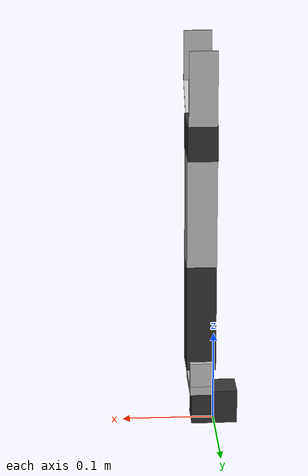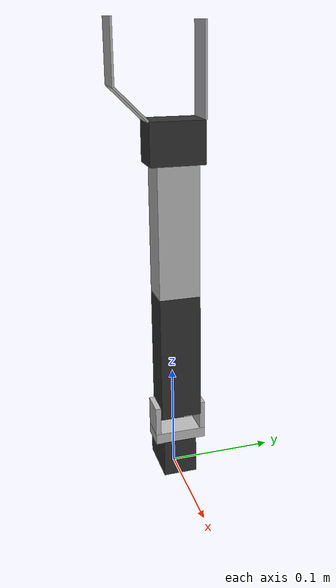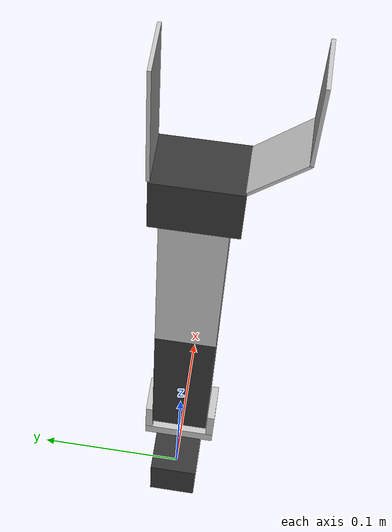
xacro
<?xml version="1.0"?>
<robot name="modular_manipulator" xmlns:xacro="http://ros.org/wiki/xacro">
  <xacro:include filename="$(find manipulator_description)/urdf/manipulator_parts.xacro"/>
  <xacro:include filename="$(find manipulator_description)/urdf/one_finger_gripper.xacro"/>

  <material name="black">
    <color rgba="0.2 0.2 0.2 1"/>
  </material>
  <material name="grey">
    <color rgba="0.75 0.75 0.75 1"/>
  </material>

  <link name="world"/>

  <xacro:property name="end_effector_base_link" value="wrist_base_link"/>

  <xacro:manipulator parent="world" end_effector_link="${end_effector_base_link}"
      link_colour_1="black" link_colour_2="grey">
    <origin xyz="0 0 0" rpy="0 0 0"/>
  </xacro:manipulator>

  <xacro:one_finger_gripper base_link_name="${end_effector_base_link}"
      base_colour="black" finger_colour="grey"/>

</robot>

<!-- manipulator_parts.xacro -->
<robot xmlns:xacro="http://ros.org/wiki/xacro">
  <!-- Manipulator macro -->
  <xacro:macro name="manipulator"
      params="parent end_effector_link link_colour_1 link_colour_2 *origin">
    <xacro:property name="PI" value="3.14159"/>

    <!-- ベースの定義 -->
    <joint name="base_joint" type="fixed">
        <parent link="${parent}"/>
        <child link="base_link"/>
        <xacro:insert_block name="origin"/>
    </joint>

    <xacro:property name="BASE_X" value="0.05"/>
    <xacro:property name="BASE_Y" value="0.032"/>
    <xacro:property name="BASE_Z" value="0.038"/>
    <link name="base_link">
        <visual>
        <geometry>
            <box size="${BASE_X} ${BASE_Y} ${BASE_Z}"/>
        </geometry>
        <origin xyz="0 0 ${BASE_Z/2}" rpy="0 0 0"/>
        <material name="${link_colour_1}"/>
        </visual>
        <collision>
        <geometry>
            <box size="${BASE_X} ${BASE_Y} ${BASE_Z}"/>
        </geometry>
        <origin xyz="0 0 ${BASE_Z/2}" rpy="0 0 0"/>
        </collision>
        <inertial>
        <mass value="0.1"/>
        <inertia ixx="1e-3" ixy="0" ixz="0" iyy="1e-3" iyz="0" izz="1e-3"/>
        </inertial>
    </link>

    <!-- 肩の定義 -->
    <joint name="shoulder_rotate_joint" type="revolute">
      <axis xyz="0 0 1"/>
      <parent link="base_link"/>
      <child link="shoulder_link"/>
      <origin xyz="${BASE_X/2-0.01} 0 ${BASE_Z}" rpy="0 0 0"/>
      <limit lower="-${PI}" upper="${PI}" effort="30" velocity="${PI}"/>
    </joint>

    <xacro:property name="SHOULDER_X" value="0.025"/>
    <xacro:property name="SHOULDER_Y" value="0.0485"/>
    <xacro:property name="SHOULDER_Z" value="0.0375"/>
    <link name="shoulder_link">
      <visual>
        <geometry>
          <box size="${SHOULDER_X} ${SHOULDER_Y} 0.01"/>
        </geometry>
        <origin xyz="0 0 0.005" rpy="0 0 0"/>
        <material name="${link_colour_2}"/>
      </visual>
      <visual>
        <geometry>
          <box size="${SHOULDER_X} 0.005 ${SHOULDER_Z-0.01}"/>
        </geometry>
        <origin xyz="0 ${SHOULDER_Y/2-0.0025} ${0.01+(SHOULDER_Z-0.01)/2}" rpy="0 0 0"/>
        <material name="${link_colour_2}"/>
      </visual>
      <visual>
        <geometry>
          <box size="${SHOULDER_X} 0.005 ${SHOULDER_Z-0.01}"/>
        </geometry>
        <origin xyz="0 ${-(SHOULDER_Y/2)+0.0025} ${0.01+(SHOULDER_Z-0.01)/2}" rpy="0 0 0"/>
        <material name="${link_colour_2}"/>
      </visual>
      <collision>
        <geometry>
          <box size="${SHOULDER_X} ${SHOULDER_Y} ${SHOULDER_Z}"/>
        </geometry>
        <origin xyz="0 0 ${SHOULDER_Z/2}" rpy="0 0 0"/>
      </collision>
      <inertial>
        <mass value="0.025"/>
        <inertia ixx="1e-3" ixy="0" ixz="0" iyy="1e-3" iyz="0" izz="1e-3"/>
      </inertial>
    </link>

    <!-- マクロで腕リンクの定義 -->
    <joint name="shoulder_pitch_joint" type="revolute">
      <axis xyz="0 1 0"/>
      <parent link="shoulder_link"/>
      <child link="upper_arm_link"/>
      <origin xyz="0 0 ${SHOULDER_Z-0.01}" rpy="0 0 0"/>
      <limit lower="-${PI}" upper="${PI}" effort="30" velocity="${PI}"/>
    </joint>

    <xacro:arm_link link_name="upper_arm_link"
        child_link_name="lower_arm_link"
        llimit="-${2 * PI / 3}"
        ulimit="${2 * PI / 3}"
        colour="${link_colour_1}"/>

    <xacro:arm_link link_name="lower_arm_link"
        child_link_name="${end_effector_link}"
        llimit="${-2 * PI / 3}"
        ulimit="${2 * PI / 3}"
        colour="${link_colour_2}"/>

    <!--link name="${end_effector_link}"/-->
  </xacro:macro>

  <xacro:macro name="arm_link" params="link_name child_link_name llimit ulimit colour">
    <xacro:property name="ARM_LINK_X" value="0.032"/>
    <xacro:property name="ARM_LINK_Y" value="0.038"/>
    <xacro:property name="ARM_LINK_Z" value="0.12"/>
    <link name="${link_name}">
      <visual>
        <geometry>
          <box size="${ARM_LINK_X} ${ARM_LINK_Y} ${ARM_LINK_Z}"/>
        </geometry>
        <origin xyz="0 0 ${ARM_LINK_Z/2}" rpy="0 0 0"/>
        <material name="${colour}"/>
      </visual>
      <collision>
        <geometry>
          <box size="${ARM_LINK_X} ${ARM_LINK_Y} ${ARM_LINK_Z}"/>
        </geometry>
        <origin xyz="0 0 ${ARM_LINK_Z/2}" rpy="0 0 0"/>
      </collision>
      <inertial>
        <mass value="0.2"/>
        <inertia ixx="1e-3" ixy="0" ixz="0" iyy="1e-3" iyz="0" izz="1e-3"/>
      </inertial>
    </link>

    <joint name="${link_name}_joint" type="revolute">
      <axis xyz="0 1 0"/>
      <parent link="${link_name}"/>
      <child link="${child_link_name}"/>
      <limit lower="${llimit}" upper="${ulimit}" effort="30" velocity="${PI}"/>
      <origin xyz="0 0 ${ARM_LINK_Z}" rpy="0 0 0"/>
    </joint>
  </xacro:macro>

</robot>

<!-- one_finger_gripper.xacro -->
<robot xmlns:xacro="http://ros.org/wiki/xacro">
  <xacro:macro name="one_finger_gripper" params="base_link_name base_colour finger_colour">
    <xacro:property name="PI" value="3.14159"/>

    <!-- エンドエフェクタの定義 -->
    <xacro:property name="SERVO_X" value="0.032"/>
    <xacro:property name="SERVO_Y" value="0.05"/>
    <xacro:property name="SERVO_Z" value="0.038"/>

    <link name="${base_link_name}">
      <visual>
        <geometry>
          <box size="${SERVO_X} ${SERVO_Y} ${SERVO_Z}"/>
        </geometry>
        <origin xyz="0 0 ${SERVO_Z/2}" rpy="0 0 0"/>
        <material name="${base_colour}"/>
      </visual>
      <collision>
        <geometry>
          <box size="${SERVO_X} ${SERVO_Y} ${SERVO_Z}"/>
        </geometry>
        <origin xyz="0 0 ${SERVO_Z/2}" rpy="0 0 0"/>
      </collision>
      <inertial>
        <mass value="0.1"/>
        <inertia ixx="1e-3" ixy="0" ixz="0" iyy="1e-3" iyz="0" izz="1e-3"/>
      </inertial>
    </link>

    <link name="fixed_finger">
      <visual>
        <geometry>
          <box size="0.03 0.002 0.08"/>
        </geometry>
        <origin xyz="0 0 0.04" rpy="0 0 0"/>
        <material name="${finger_colour}"/>
      </visual>
      <collision>
        <geometry>
          <box size="0.03 0.002 0.08"/>
        </geometry>
        <origin xyz="0 0 0.04" rpy="0 0 0"/>
      </collision>
      <inertial>
        <mass value="0.01"/>
        <inertia ixx="1e-3" ixy="0" ixz="0" iyy="1e-3" iyz="0" izz="1e-3"/>
      </inertial>
    </link>

    <joint name="fixed_finger_joint" type="fixed">
      <parent link="${base_link_name}"/>
      <child link="fixed_finger"/>
      <origin xyz="0 ${SERVO_Y/2} ${SERVO_Z}" rpy="0 0 0"/>
    </joint>

    <link name="moving_finger">
      <visual>
        <geometry>
          <box size="0.03 0.002 0.04"/>
        </geometry>
        <origin xyz="0 -0.01414 0.01414" rpy="${PI/4} 0 0"/>
        <material name="${finger_colour}"/>
      </visual>
      <visual>
        <geometry>
          <box size="0.03 0.002 0.05414"/>
        </geometry>
        <origin xyz="0 -0.02828 ${0.05415/2+0.02828}" rpy="0 0 0"/>
        <material name="${finger_colour}"/>
      </visual>
      <collision>
        <geometry>
          <box size="0.03 0.002 0.04"/>
        </geometry>
        <origin xyz="0 0 0.02" rpy="${PI/4} 0 0"/>
      </collision>
      <collision>
        <geometry>
          <box size="0.04 0.002 0.03"/>
        </geometry>
        <origin xyz="${0.02+0.02828} 0.02828 0.015" rpy="0 0 0"/>
      </collision>
      <inertial>
        <mass value="0.01"/>
        <inertia ixx="1e-3" ixy="0" ixz="0" iyy="1e-3" iyz="0" izz="1e-3"/>
      </inertial>
    </link>

    <joint name="moving_finger_joint" type="revolute">
      <axis xyz="1 0 0"/>
      <parent link="${base_link_name}"/>
      <child link="moving_finger"/>
      <origin xyz="0 -${SERVO_Y/2} ${SERVO_Z}" rpy="0 0 0"/>
      <limit lower="-0.75" upper="0.25" effort="30" velocity="${PI}"/>
    </joint>

  </xacro:macro>
</robot>
